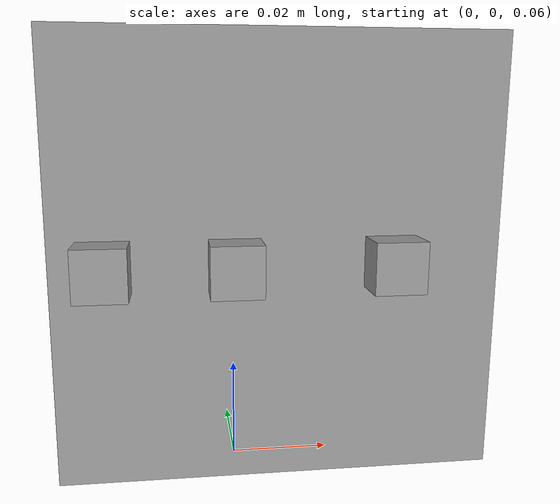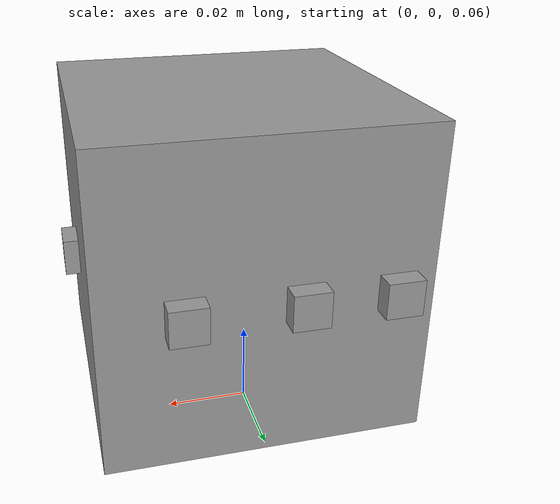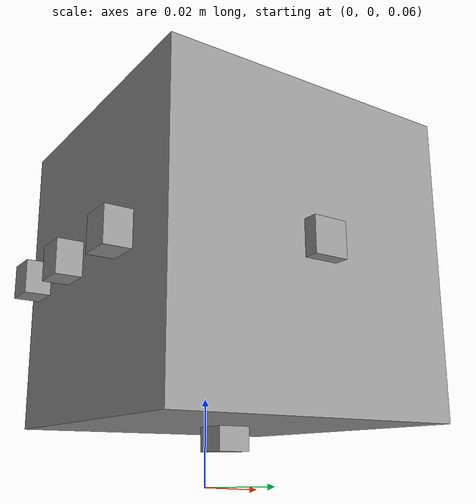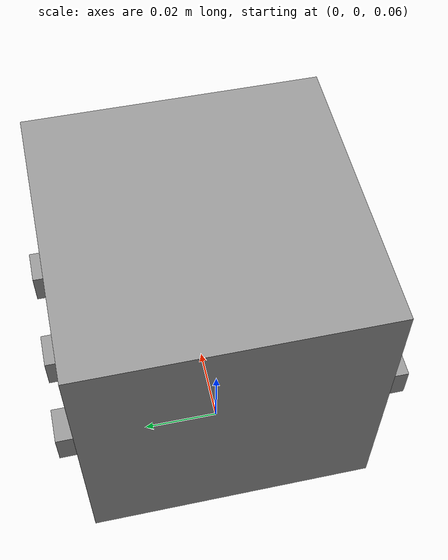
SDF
<?xml version='1.0'?>
<sdf version='1.6'>
  <model name='tiburon_bot_new'>
    <link name='link_0'>
      <pose frame=''>0.004745 0.002289 0.10857 0 -0 0</pose>
      <inertial>
        <mass>1</mass>
        <inertia>
          <ixx>0.166667</ixx>
          <ixy>0</ixy>
          <ixz>0</ixz>
          <iyy>0.166667</iyy>
          <iyz>0</iyz>
          <izz>0.166667</izz>
        </inertia>
        <pose frame=''>0 0 0 0 -0 0</pose>
      </inertial>
      <self_collide>0</self_collide>
      <kinematic>0</kinematic>
      <gravity>1</gravity>
      <visual name='visual'>
        <pose frame=''>0 0 0 0 -0 0</pose>
        <geometry>
          <box>
            <size>0.07 0.07 0.07</size>
          </box>
        </geometry>
        <material>
          <lighting>1</lighting>
          <script>
            <uri>file://media/materials/scripts/gazebo.material</uri>
            <name>Gazebo/Grey</name>
          </script>
          <shader type='pixel'>
            <normal_map>__default__</normal_map>
          </shader>
          <ambient>0.3 0.3 0.3 1</ambient>
          <diffuse>0.7 0.7 0.7 1</diffuse>
          <specular>0.01 0.01 0.01 1</specular>
          <emissive>0 0 0 1</emissive>
        </material>
        <transparency>0</transparency>
        <cast_shadows>1</cast_shadows>
      </visual>
      <collision name='collision'>
        <laser_retro>0</laser_retro>
        <max_contacts>10</max_contacts>
        <pose frame=''>0 0 0 0 -0 0</pose>
        <geometry>
          <box>
            <size>0.07 0.07 0.07</size>
          </box>
        </geometry>
        <surface>
          <friction>
            <ode>
              <mu>1</mu>
              <mu2>1</mu2>
              <fdir1>0 0 0</fdir1>
              <slip1>0</slip1>
              <slip2>0</slip2>
            </ode>
            <torsional>
              <coefficient>1</coefficient>
              <patch_radius>0</patch_radius>
              <surface_radius>0</surface_radius>
              <use_patch_radius>1</use_patch_radius>
              <ode>
                <slip>0</slip>
              </ode>
            </torsional>
          </friction>
          <bounce>
            <restitution_coefficient>0</restitution_coefficient>
            <threshold>1e+06</threshold>
          </bounce>
          <contact>
            <collide_without_contact>0</collide_without_contact>
            <collide_without_contact_bitmask>1</collide_without_contact_bitmask>
            <collide_bitmask>1</collide_bitmask>
            <ode>
              <soft_cfm>0</soft_cfm>
              <soft_erp>0.2</soft_erp>
              <kp>1e+13</kp>
              <kd>1</kd>
              <max_vel>0.01</max_vel>
              <min_depth>0</min_depth>
            </ode>
            <bullet>
              <split_impulse>1</split_impulse>
              <split_impulse_penetration_threshold>-0.01</split_impulse_penetration_threshold>
              <soft_cfm>0</soft_cfm>
              <soft_erp>0.2</soft_erp>
              <kp>1e+13</kp>
              <kd>1</kd>
            </bullet>
          </contact>
        </surface>
      </collision>
    </link>
    <link name='link_1'>
      <pose frame=''>0.022004 0.037619 0.10857 0 -0 0</pose>
      <inertial>
        <mass>1</mass>
        <inertia>
          <ixx>0.166667</ixx>
          <ixy>0</ixy>
          <ixz>0</ixz>
          <iyy>0.166667</iyy>
          <iyz>0</iyz>
          <izz>0.166667</izz>
        </inertia>
        <pose frame=''>0 0 0 0 -0 0</pose>
      </inertial>
      <self_collide>0</self_collide>
      <kinematic>0</kinematic>
      <gravity>1</gravity>
      <visual name='visual'>
        <pose frame=''>0 0 0 0 -0 0</pose>
        <geometry>
          <box>
            <size>0.008 0.008 0.008</size>
          </box>
        </geometry>
        <material>
          <lighting>1</lighting>
          <script>
            <uri>file://media/materials/scripts/gazebo.material</uri>
            <name>Gazebo/Grey</name>
          </script>
          <shader type='pixel'>
            <normal_map>__default__</normal_map>
          </shader>
          <ambient>0.3 0.3 0.3 1</ambient>
          <diffuse>0.7 0.7 0.7 1</diffuse>
          <specular>0.01 0.01 0.01 1</specular>
          <emissive>0 0 0 1</emissive>
        </material>
        <transparency>0</transparency>
        <cast_shadows>1</cast_shadows>
      </visual>
      <collision name='collision'>
        <laser_retro>0</laser_retro>
        <max_contacts>10</max_contacts>
        <pose frame=''>0 0 0 0 -0 0</pose>
        <geometry>
          <box>
            <size>0.008 0.008 0.008</size>
          </box>
        </geometry>
        <surface>
          <friction>
            <ode>
              <mu>1</mu>
              <mu2>1</mu2>
              <fdir1>0 0 0</fdir1>
              <slip1>0</slip1>
              <slip2>0</slip2>
            </ode>
            <torsional>
              <coefficient>1</coefficient>
              <patch_radius>0</patch_radius>
              <surface_radius>0</surface_radius>
              <use_patch_radius>1</use_patch_radius>
              <ode>
                <slip>0</slip>
              </ode>
            </torsional>
          </friction>
          <bounce>
            <restitution_coefficient>0</restitution_coefficient>
            <threshold>1e+06</threshold>
          </bounce>
          <contact>
            <collide_without_contact>0</collide_without_contact>
            <collide_without_contact_bitmask>1</collide_without_contact_bitmask>
            <collide_bitmask>1</collide_bitmask>
            <ode>
              <soft_cfm>0</soft_cfm>
              <soft_erp>0.2</soft_erp>
              <kp>1e+13</kp>
              <kd>1</kd>
              <max_vel>0.01</max_vel>
              <min_depth>0</min_depth>
            </ode>
            <bullet>
              <split_impulse>1</split_impulse>
              <split_impulse_penetration_threshold>-0.01</split_impulse_penetration_threshold>
              <soft_cfm>0</soft_cfm>
              <soft_erp>0.2</soft_erp>
              <kp>1e+13</kp>
              <kd>1</kd>
            </bullet>
          </contact>
        </surface>
      </collision>
    </link>
    <link name='link_1_clone'>
      <pose frame=''>-0.002381 0.037619 0.10857 0 -0 0</pose>
      <inertial>
        <mass>1</mass>
        <inertia>
          <ixx>0.166667</ixx>
          <ixy>0</ixy>
          <ixz>0</ixz>
          <iyy>0.166667</iyy>
          <iyz>0</iyz>
          <izz>0.166667</izz>
        </inertia>
        <pose frame=''>0 0 0 0 -0 0</pose>
      </inertial>
      <self_collide>0</self_collide>
      <kinematic>0</kinematic>
      <gravity>1</gravity>
      <visual name='visual'>
        <pose frame=''>0 0 0 0 -0 0</pose>
        <geometry>
          <box>
            <size>0.008 0.008 0.008</size>
          </box>
        </geometry>
        <material>
          <lighting>1</lighting>
          <script>
            <uri>file://media/materials/scripts/gazebo.material</uri>
            <name>Gazebo/Grey</name>
          </script>
          <shader type='pixel'>
            <normal_map>__default__</normal_map>
          </shader>
          <ambient>0.3 0.3 0.3 1</ambient>
          <diffuse>0.7 0.7 0.7 1</diffuse>
          <specular>0.01 0.01 0.01 1</specular>
          <emissive>0 0 0 1</emissive>
        </material>
        <transparency>0</transparency>
        <cast_shadows>1</cast_shadows>
      </visual>
      <collision name='collision'>
        <laser_retro>0</laser_retro>
        <max_contacts>10</max_contacts>
        <pose frame=''>0 0 0 0 -0 0</pose>
        <geometry>
          <box>
            <size>0.008 0.008 0.008</size>
          </box>
        </geometry>
        <surface>
          <friction>
            <ode>
              <mu>1</mu>
              <mu2>1</mu2>
              <fdir1>0 0 0</fdir1>
              <slip1>0</slip1>
              <slip2>0</slip2>
            </ode>
            <torsional>
              <coefficient>1</coefficient>
              <patch_radius>0</patch_radius>
              <surface_radius>0</surface_radius>
              <use_patch_radius>1</use_patch_radius>
              <ode>
                <slip>0</slip>
              </ode>
            </torsional>
          </friction>
          <bounce>
            <restitution_coefficient>0</restitution_coefficient>
            <threshold>1e+06</threshold>
          </bounce>
          <contact>
            <collide_without_contact>0</collide_without_contact>
            <collide_without_contact_bitmask>1</collide_without_contact_bitmask>
            <collide_bitmask>1</collide_bitmask>
            <ode>
              <soft_cfm>0</soft_cfm>
              <soft_erp>0.2</soft_erp>
              <kp>1e+13</kp>
              <kd>1</kd>
              <max_vel>0.01</max_vel>
              <min_depth>0</min_depth>
            </ode>
            <bullet>
              <split_impulse>1</split_impulse>
              <split_impulse_penetration_threshold>-0.01</split_impulse_penetration_threshold>
              <soft_cfm>0</soft_cfm>
              <soft_erp>0.2</soft_erp>
              <kp>1e+13</kp>
              <kd>1</kd>
            </bullet>
          </contact>
        </surface>
      </collision>
    </link>
    <link name='link_1_clone_0'>
      <pose frame=''>-0.021996 0.037619 0.10857 0 -0 0</pose>
      <inertial>
        <mass>1</mass>
        <inertia>
          <ixx>0.166667</ixx>
          <ixy>0</ixy>
          <ixz>0</ixz>
          <iyy>0.166667</iyy>
          <iyz>0</iyz>
          <izz>0.166667</izz>
        </inertia>
        <pose frame=''>0 0 0 0 -0 0</pose>
      </inertial>
      <self_collide>0</self_collide>
      <kinematic>0</kinematic>
      <gravity>1</gravity>
      <visual name='visual'>
        <pose frame=''>0 0 0 0 -0 0</pose>
        <geometry>
          <box>
            <size>0.008 0.008 0.008</size>
          </box>
        </geometry>
        <material>
          <lighting>1</lighting>
          <script>
            <uri>file://media/materials/scripts/gazebo.material</uri>
            <name>Gazebo/Grey</name>
          </script>
          <shader type='pixel'>
            <normal_map>__default__</normal_map>
          </shader>
          <ambient>0.3 0.3 0.3 1</ambient>
          <diffuse>0.7 0.7 0.7 1</diffuse>
          <specular>0.01 0.01 0.01 1</specular>
          <emissive>0 0 0 1</emissive>
        </material>
        <transparency>0</transparency>
        <cast_shadows>1</cast_shadows>
      </visual>
      <collision name='collision'>
        <laser_retro>0</laser_retro>
        <max_contacts>10</max_contacts>
        <pose frame=''>0 0 0 0 -0 0</pose>
        <geometry>
          <box>
            <size>0.008 0.008 0.008</size>
          </box>
        </geometry>
        <surface>
          <friction>
            <ode>
              <mu>1</mu>
              <mu2>1</mu2>
              <fdir1>0 0 0</fdir1>
              <slip1>0</slip1>
              <slip2>0</slip2>
            </ode>
            <torsional>
              <coefficient>1</coefficient>
              <patch_radius>0</patch_radius>
              <surface_radius>0</surface_radius>
              <use_patch_radius>1</use_patch_radius>
              <ode>
                <slip>0</slip>
              </ode>
            </torsional>
          </friction>
          <bounce>
            <restitution_coefficient>0</restitution_coefficient>
            <threshold>1e+06</threshold>
          </bounce>
          <contact>
            <collide_without_contact>0</collide_without_contact>
            <collide_without_contact_bitmask>1</collide_without_contact_bitmask>
            <collide_bitmask>1</collide_bitmask>
            <ode>
              <soft_cfm>0</soft_cfm>
              <soft_erp>0.2</soft_erp>
              <kp>1e+13</kp>
              <kd>1</kd>
              <max_vel>0.01</max_vel>
              <min_depth>0</min_depth>
            </ode>
            <bullet>
              <split_impulse>1</split_impulse>
              <split_impulse_penetration_threshold>-0.01</split_impulse_penetration_threshold>
              <soft_cfm>0</soft_cfm>
              <soft_erp>0.2</soft_erp>
              <kp>1e+13</kp>
              <kd>1</kd>
            </bullet>
          </contact>
        </surface>
      </collision>
    </link>
    <link name='link_1_clone_1'>
      <pose frame=''>0.022004 -0.03481 0.10857 0 -0 0</pose>
      <inertial>
        <mass>1</mass>
        <inertia>
          <ixx>0.166667</ixx>
          <ixy>0</ixy>
          <ixz>0</ixz>
          <iyy>0.166667</iyy>
          <iyz>0</iyz>
          <izz>0.166667</izz>
        </inertia>
        <pose frame=''>0 0 0 0 -0 0</pose>
      </inertial>
      <self_collide>0</self_collide>
      <kinematic>0</kinematic>
      <gravity>1</gravity>
      <visual name='visual'>
        <pose frame=''>0 0 0 0 -0 0</pose>
        <geometry>
          <box>
            <size>0.008 0.008 0.008</size>
          </box>
        </geometry>
        <material>
          <lighting>1</lighting>
          <script>
            <uri>file://media/materials/scripts/gazebo.material</uri>
            <name>Gazebo/Grey</name>
          </script>
          <shader type='pixel'>
            <normal_map>__default__</normal_map>
          </shader>
          <ambient>0.3 0.3 0.3 1</ambient>
          <diffuse>0.7 0.7 0.7 1</diffuse>
          <specular>0.01 0.01 0.01 1</specular>
          <emissive>0 0 0 1</emissive>
        </material>
        <transparency>0</transparency>
        <cast_shadows>1</cast_shadows>
      </visual>
      <collision name='collision'>
        <laser_retro>0</laser_retro>
        <max_contacts>10</max_contacts>
        <pose frame=''>0 0 0 0 -0 0</pose>
        <geometry>
          <box>
            <size>0.008 0.008 0.008</size>
          </box>
        </geometry>
        <surface>
          <friction>
            <ode>
              <mu>1</mu>
              <mu2>1</mu2>
              <fdir1>0 0 0</fdir1>
              <slip1>0</slip1>
              <slip2>0</slip2>
            </ode>
            <torsional>
              <coefficient>1</coefficient>
              <patch_radius>0</patch_radius>
              <surface_radius>0</surface_radius>
              <use_patch_radius>1</use_patch_radius>
              <ode>
                <slip>0</slip>
              </ode>
            </torsional>
          </friction>
          <bounce>
            <restitution_coefficient>0</restitution_coefficient>
            <threshold>1e+06</threshold>
          </bounce>
          <contact>
            <collide_without_contact>0</collide_without_contact>
            <collide_without_contact_bitmask>1</collide_without_contact_bitmask>
            <collide_bitmask>1</collide_bitmask>
            <ode>
              <soft_cfm>0</soft_cfm>
              <soft_erp>0.2</soft_erp>
              <kp>1e+13</kp>
              <kd>1</kd>
              <max_vel>0.01</max_vel>
              <min_depth>0</min_depth>
            </ode>
            <bullet>
              <split_impulse>1</split_impulse>
              <split_impulse_penetration_threshold>-0.01</split_impulse_penetration_threshold>
              <soft_cfm>0</soft_cfm>
              <soft_erp>0.2</soft_erp>
              <kp>1e+13</kp>
              <kd>1</kd>
            </bullet>
          </contact>
        </surface>
      </collision>
    </link>
    <link name='link_1_clone_1_clone'>
      <pose frame=''>-0.002381 -0.03481 0.10857 0 -0 0</pose>
      <inertial>
        <mass>1</mass>
        <inertia>
          <ixx>0.166667</ixx>
          <ixy>0</ixy>
          <ixz>0</ixz>
          <iyy>0.166667</iyy>
          <iyz>0</iyz>
          <izz>0.166667</izz>
        </inertia>
        <pose frame=''>0 0 0 0 -0 0</pose>
      </inertial>
      <self_collide>0</self_collide>
      <kinematic>0</kinematic>
      <gravity>1</gravity>
      <visual name='visual'>
        <pose frame=''>0 0 0 0 -0 0</pose>
        <geometry>
          <box>
            <size>0.008 0.008 0.008</size>
          </box>
        </geometry>
        <material>
          <lighting>1</lighting>
          <script>
            <uri>file://media/materials/scripts/gazebo.material</uri>
            <name>Gazebo/Grey</name>
          </script>
          <shader type='pixel'>
            <normal_map>__default__</normal_map>
          </shader>
          <ambient>0.3 0.3 0.3 1</ambient>
          <diffuse>0.7 0.7 0.7 1</diffuse>
          <specular>0.01 0.01 0.01 1</specular>
          <emissive>0 0 0 1</emissive>
        </material>
        <transparency>0</transparency>
        <cast_shadows>1</cast_shadows>
      </visual>
      <collision name='collision'>
        <laser_retro>0</laser_retro>
        <max_contacts>10</max_contacts>
        <pose frame=''>0 0 0 0 -0 0</pose>
        <geometry>
          <box>
            <size>0.008 0.008 0.008</size>
          </box>
        </geometry>
        <surface>
          <friction>
            <ode>
              <mu>1</mu>
              <mu2>1</mu2>
              <fdir1>0 0 0</fdir1>
              <slip1>0</slip1>
              <slip2>0</slip2>
            </ode>
            <torsional>
              <coefficient>1</coefficient>
              <patch_radius>0</patch_radius>
              <surface_radius>0</surface_radius>
              <use_patch_radius>1</use_patch_radius>
              <ode>
                <slip>0</slip>
              </ode>
            </torsional>
          </friction>
          <bounce>
            <restitution_coefficient>0</restitution_coefficient>
            <threshold>1e+06</threshold>
          </bounce>
          <contact>
            <collide_without_contact>0</collide_without_contact>
            <collide_without_contact_bitmask>1</collide_without_contact_bitmask>
            <collide_bitmask>1</collide_bitmask>
            <ode>
              <soft_cfm>0</soft_cfm>
              <soft_erp>0.2</soft_erp>
              <kp>1e+13</kp>
              <kd>1</kd>
              <max_vel>0.01</max_vel>
              <min_depth>0</min_depth>
            </ode>
            <bullet>
              <split_impulse>1</split_impulse>
              <split_impulse_penetration_threshold>-0.01</split_impulse_penetration_threshold>
              <soft_cfm>0</soft_cfm>
              <soft_erp>0.2</soft_erp>
              <kp>1e+13</kp>
              <kd>1</kd>
            </bullet>
          </contact>
        </surface>
      </collision>
    </link>
    <link name='link_1_clone_1_clone_0'>
      <pose frame=''>-0.021996 -0.03481 0.10857 0 -0 0</pose>
      <inertial>
        <mass>1</mass>
        <inertia>
          <ixx>0.166667</ixx>
          <ixy>0</ixy>
          <ixz>0</ixz>
          <iyy>0.166667</iyy>
          <iyz>0</iyz>
          <izz>0.166667</izz>
        </inertia>
        <pose frame=''>0 0 0 0 -0 0</pose>
      </inertial>
      <self_collide>0</self_collide>
      <kinematic>0</kinematic>
      <gravity>1</gravity>
      <visual name='visual'>
        <pose frame=''>0 0 0 0 -0 0</pose>
        <geometry>
          <box>
            <size>0.008 0.008 0.008</size>
          </box>
        </geometry>
        <material>
          <lighting>1</lighting>
          <script>
            <uri>file://media/materials/scripts/gazebo.material</uri>
            <name>Gazebo/Grey</name>
          </script>
          <shader type='pixel'>
            <normal_map>__default__</normal_map>
          </shader>
          <ambient>0.3 0.3 0.3 1</ambient>
          <diffuse>0.7 0.7 0.7 1</diffuse>
          <specular>0.01 0.01 0.01 1</specular>
          <emissive>0 0 0 1</emissive>
        </material>
        <transparency>0</transparency>
        <cast_shadows>1</cast_shadows>
      </visual>
      <collision name='collision'>
        <laser_retro>0</laser_retro>
        <max_contacts>10</max_contacts>
        <pose frame=''>0 0 0 0 -0 0</pose>
        <geometry>
          <box>
            <size>0.008 0.008 0.008</size>
          </box>
        </geometry>
        <surface>
          <friction>
            <ode>
              <mu>1</mu>
              <mu2>1</mu2>
              <fdir1>0 0 0</fdir1>
              <slip1>0</slip1>
              <slip2>0</slip2>
            </ode>
            <torsional>
              <coefficient>1</coefficient>
              <patch_radius>0</patch_radius>
              <surface_radius>0</surface_radius>
              <use_patch_radius>1</use_patch_radius>
              <ode>
                <slip>0</slip>
              </ode>
            </torsional>
          </friction>
          <bounce>
            <restitution_coefficient>0</restitution_coefficient>
            <threshold>1e+06</threshold>
          </bounce>
          <contact>
            <collide_without_contact>0</collide_without_contact>
            <collide_without_contact_bitmask>1</collide_without_contact_bitmask>
            <collide_bitmask>1</collide_bitmask>
            <ode>
              <soft_cfm>0</soft_cfm>
              <soft_erp>0.2</soft_erp>
              <kp>1e+13</kp>
              <kd>1</kd>
              <max_vel>0.01</max_vel>
              <min_depth>0</min_depth>
            </ode>
            <bullet>
              <split_impulse>1</split_impulse>
              <split_impulse_penetration_threshold>-0.01</split_impulse_penetration_threshold>
              <soft_cfm>0</soft_cfm>
              <soft_erp>0.2</soft_erp>
              <kp>1e+13</kp>
              <kd>1</kd>
            </bullet>
          </contact>
        </surface>
      </collision>
    </link>
    <link name='link_1_clone_2'>
      <pose frame=''>0.004745 0.002289 0.072 0 -0 0</pose>
      <inertial>
        <mass>1</mass>
        <inertia>
          <ixx>0.166667</ixx>
          <ixy>0</ixy>
          <ixz>0</ixz>
          <iyy>0.166667</iyy>
          <iyz>0</iyz>
          <izz>0.166667</izz>
        </inertia>
        <pose frame=''>0 0 0 0 -0 0</pose>
      </inertial>
      <self_collide>0</self_collide>
      <kinematic>0</kinematic>
      <gravity>1</gravity>
      <visual name='visual'>
        <pose frame=''>0 0 0 0 -0 0</pose>
        <geometry>
          <box>
            <size>0.008 0.008 0.008</size>
          </box>
        </geometry>
        <material>
          <lighting>1</lighting>
          <script>
            <uri>file://media/materials/scripts/gazebo.material</uri>
            <name>Gazebo/Grey</name>
          </script>
          <shader type='pixel'>
            <normal_map>__default__</normal_map>
          </shader>
          <ambient>0.3 0.3 0.3 1</ambient>
          <diffuse>0.7 0.7 0.7 1</diffuse>
          <specular>0.01 0.01 0.01 1</specular>
          <emissive>0 0 0 1</emissive>
        </material>
        <transparency>0</transparency>
        <cast_shadows>1</cast_shadows>
      </visual>
      <collision name='collision'>
        <laser_retro>0</laser_retro>
        <max_contacts>10</max_contacts>
        <pose frame=''>0 0 0 0 -0 0</pose>
        <geometry>
          <box>
            <size>0.008 0.008 0.008</size>
          </box>
        </geometry>
        <surface>
          <friction>
            <ode>
              <mu>1</mu>
              <mu2>1</mu2>
              <fdir1>0 0 0</fdir1>
              <slip1>0</slip1>
              <slip2>0</slip2>
            </ode>
            <torsional>
              <coefficient>1</coefficient>
              <patch_radius>0</patch_radius>
              <surface_radius>0</surface_radius>
              <use_patch_radius>1</use_patch_radius>
              <ode>
                <slip>0</slip>
              </ode>
            </torsional>
          </friction>
          <bounce>
            <restitution_coefficient>0</restitution_coefficient>
            <threshold>1e+06</threshold>
          </bounce>
          <contact>
            <collide_without_contact>0</collide_without_contact>
            <collide_without_contact_bitmask>1</collide_without_contact_bitmask>
            <collide_bitmask>1</collide_bitmask>
            <ode>
              <soft_cfm>0</soft_cfm>
              <soft_erp>0.2</soft_erp>
              <kp>1e+13</kp>
              <kd>1</kd>
              <max_vel>0.01</max_vel>
              <min_depth>0</min_depth>
            </ode>
            <bullet>
              <split_impulse>1</split_impulse>
              <split_impulse_penetration_threshold>-0.01</split_impulse_penetration_threshold>
              <soft_cfm>0</soft_cfm>
              <soft_erp>0.2</soft_erp>
              <kp>1e+13</kp>
              <kd>1</kd>
            </bullet>
          </contact>
        </surface>
      </collision>
    </link>
    <link name='link_1_clone_3'>
      <pose frame=''>0.039 0.002289 0.10857 0 -0 0</pose>
      <inertial>
        <mass>1</mass>
        <inertia>
          <ixx>0.166667</ixx>
          <ixy>0</ixy>
          <ixz>0</ixz>
          <iyy>0.166667</iyy>
          <iyz>0</iyz>
          <izz>0.166667</izz>
        </inertia>
        <pose frame=''>0 0 0 0 -0 0</pose>
      </inertial>
      <self_collide>0</self_collide>
      <kinematic>0</kinematic>
      <gravity>1</gravity>
      <visual name='visual'>
        <pose frame=''>0 0 0 0 -0 0</pose>
        <geometry>
          <box>
            <size>0.008 0.008 0.008</size>
          </box>
        </geometry>
        <material>
          <lighting>1</lighting>
          <script>
            <uri>file://media/materials/scripts/gazebo.material</uri>
            <name>Gazebo/Grey</name>
          </script>
          <shader type='pixel'>
            <normal_map>__default__</normal_map>
          </shader>
          <ambient>0.3 0.3 0.3 1</ambient>
          <diffuse>0.7 0.7 0.7 1</diffuse>
          <specular>0.01 0.01 0.01 1</specular>
          <emissive>0 0 0 1</emissive>
        </material>
        <transparency>0</transparency>
        <cast_shadows>1</cast_shadows>
      </visual>
      <collision name='collision'>
        <laser_retro>0</laser_retro>
        <max_contacts>10</max_contacts>
        <pose frame=''>0 0 0 0 -0 0</pose>
        <geometry>
          <box>
            <size>0.008 0.008 0.008</size>
          </box>
        </geometry>
        <surface>
          <friction>
            <ode>
              <mu>1</mu>
              <mu2>1</mu2>
              <fdir1>0 0 0</fdir1>
              <slip1>0</slip1>
              <slip2>0</slip2>
            </ode>
            <torsional>
              <coefficient>1</coefficient>
              <patch_radius>0</patch_radius>
              <surface_radius>0</surface_radius>
              <use_patch_radius>1</use_patch_radius>
              <ode>
                <slip>0</slip>
              </ode>
            </torsional>
          </friction>
          <bounce>
            <restitution_coefficient>0</restitution_coefficient>
            <threshold>1e+06</threshold>
          </bounce>
          <contact>
            <collide_without_contact>0</collide_without_contact>
            <collide_without_contact_bitmask>1</collide_without_contact_bitmask>
            <collide_bitmask>1</collide_bitmask>
            <ode>
              <soft_cfm>0</soft_cfm>
              <soft_erp>0.2</soft_erp>
              <kp>1e+13</kp>
              <kd>1</kd>
              <max_vel>0.01</max_vel>
              <min_depth>0</min_depth>
            </ode>
            <bullet>
              <split_impulse>1</split_impulse>
              <split_impulse_penetration_threshold>-0.01</split_impulse_penetration_threshold>
              <soft_cfm>0</soft_cfm>
              <soft_erp>0.2</soft_erp>
              <kp>1e+13</kp>
              <kd>1</kd>
            </bullet>
          </contact>
        </surface>
      </collision>
    </link>
    <joint name='link_0_JOINT_0' type='fixed'>
      <parent>link_0</parent>
      <child>link_1_clone_2</child>
      <pose frame=''>0 0 0 0 -0 0</pose>
      <physics>
        <ode>
          <limit>
            <cfm>0</cfm>
            <erp>0.2</erp>
          </limit>
          <suspension>
            <cfm>0</cfm>
            <erp>0.2</erp>
          </suspension>
        </ode>
      </physics>
    </joint>
    <joint name='link_0_JOINT_1' type='fixed'>
      <parent>link_0</parent>
      <child>link_1_clone_3</child>
      <pose frame=''>0 0 0 0 -0 0</pose>
      <physics>
        <ode>
          <limit>
            <cfm>0</cfm>
            <erp>0.2</erp>
          </limit>
          <suspension>
            <cfm>0</cfm>
            <erp>0.2</erp>
          </suspension>
        </ode>
      </physics>
    </joint>
    <joint name='link_0_JOINT_4' type='fixed'>
      <parent>link_0</parent>
      <child>link_1_clone_0</child>
      <pose frame=''>0 0 0 0 -0 0</pose>
      <physics>
        <ode>
          <limit>
            <cfm>0</cfm>
            <erp>0.2</erp>
          </limit>
          <suspension>
            <cfm>0</cfm>
            <erp>0.2</erp>
          </suspension>
        </ode>
      </physics>
    </joint>
    <joint name='link_0_JOINT_5' type='fixed'>
      <parent>link_0</parent>
      <child>link_1</child>
      <pose frame=''>0 0 0 0 -0 0</pose>
      <physics>
        <ode>
          <limit>
            <cfm>0</cfm>
            <erp>0.2</erp>
          </limit>
          <suspension>
            <cfm>0</cfm>
            <erp>0.2</erp>
          </suspension>
        </ode>
      </physics>
    </joint>
    <joint name='link_0_JOINT_6' type='fixed'>
      <parent>link_0</parent>
      <child>link_1_clone</child>
      <pose frame=''>0 0 0 0 -0 0</pose>
      <physics>
        <ode>
          <limit>
            <cfm>0</cfm>
            <erp>0.2</erp>
          </limit>
          <suspension>
            <cfm>0</cfm>
            <erp>0.2</erp>
          </suspension>
        </ode>
      </physics>
    </joint>
    <joint name='link_0_JOINT_7' type='fixed'>
      <parent>link_0</parent>
      <child>link_1_clone_1</child>
      <pose frame=''>0 0 0 0 -0 0</pose>
      <physics>
        <ode>
          <limit>
            <cfm>0</cfm>
            <erp>0.2</erp>
          </limit>
          <suspension>
            <cfm>0</cfm>
            <erp>0.2</erp>
          </suspension>
        </ode>
      </physics>
    </joint>
    <joint name='link_0_JOINT_8' type='fixed'>
      <parent>link_0</parent>
      <child>link_1_clone_1_clone</child>
      <pose frame=''>0 0 0 0 -0 0</pose>
      <physics>
        <ode>
          <limit>
            <cfm>0</cfm>
            <erp>0.2</erp>
          </limit>
          <suspension>
            <cfm>0</cfm>
            <erp>0.2</erp>
          </suspension>
        </ode>
      </physics>
    </joint>
    <joint name='link_0_JOINT_9' type='revolute'>
      <parent>link_0</parent>
      <child>link_1_clone_1_clone_0</child>
      <pose frame=''>0 0 0 0 -0 0</pose>
      <axis>
        <xyz>1 0 0</xyz>
        <use_parent_model_frame>0</use_parent_model_frame>
        <limit>
          <lower>-1.79769e+308</lower>
          <upper>1.79769e+308</upper>
          <effort>-1</effort>
          <velocity>-1</velocity>
        </limit>
        <dynamics>
          <spring_reference>0</spring_reference>
          <spring_stiffness>0</spring_stiffness>
          <damping>0</damping>
          <friction>0</friction>
        </dynamics>
      </axis>
      <physics>
        <ode>
          <limit>
            <cfm>0</cfm>
            <erp>0.2</erp>
          </limit>
          <suspension>
            <cfm>0</cfm>
            <erp>0.2</erp>
          </suspension>
        </ode>
      </physics>
    </joint>
    <static>0</static>
    <allow_auto_disable>1</allow_auto_disable>
  </model>
</sdf>
